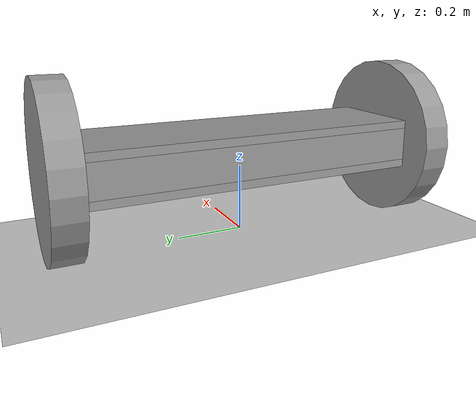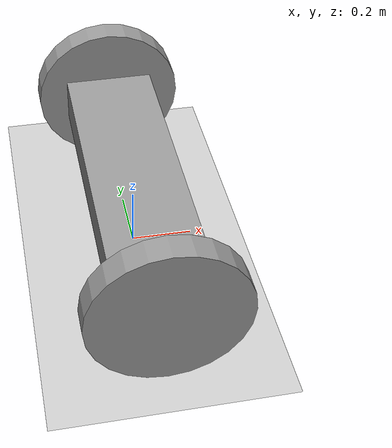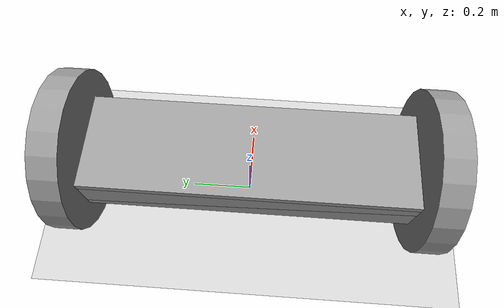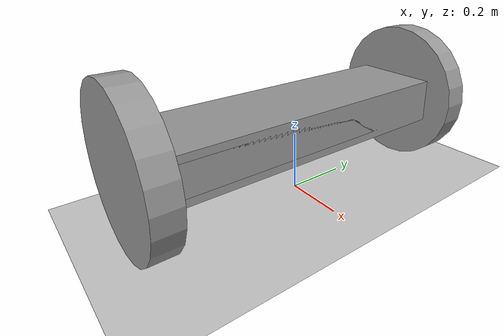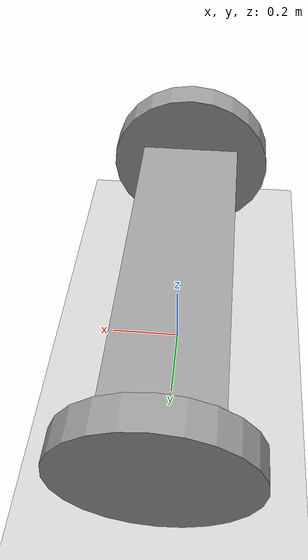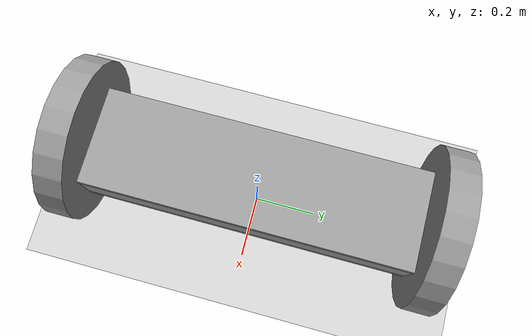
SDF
<sdf version="1.6">
 <world name="default">
  <model name="ground_plane">
   <static>1</static>
   <link name="link">
    <collision name="collision">
     <geometry><plane><normal>0 0 1</normal><size>100 100</size></plane></geometry>
     <surface><friction><ode><mu>100</mu><mu2>50</mu2></ode></friction></surface>
    </collision>
    <visual name="visual">
     <cast_shadows>0</cast_shadows>
     <geometry><plane><normal>0 0 1</normal><size>100 100</size></plane></geometry>
     <material>
      <script><uri>file://media/materials/scripts/gazebo.material</uri><name>Gazebo/Grey</name></script>
     </material>
    </visual>
   </link>
  </model>
  <model name="robot">
   <link name="link_0">
    <inertial>
     <mass>0.118489</mass>
     <inertia>
      <ixx>0.00517304</ixx>
      <ixy>0</ixy>
      <ixz>0</ixz>
      <iyy>0.0128061</iyy>
      <iyz>0</iyz>
      <izz>0.0175459</izz>
     </inertia>
    </inertial>
    <visual name="visual">
     <geometry><box><size>0.3 1 0.1</size></box></geometry>
     <material>
      <lighting>1</lighting>
      <script><uri>file://media/materials/scripts/gazebo.material</uri><name>Gazebo/Grey</name></script>
      <ambient>0.3 0.3 0.3 1</ambient>
      <diffuse>0.7 0.7 0.7 1</diffuse>
      <specular>0.01 0.01 0.01 1</specular>
      <emissive>0 0 0 1</emissive>
      <shader type="vertex"><normal_map>__default__</normal_map></shader>
     </material>
    </visual>
    <visual name="ModelPreview_0::link_0::visual_1">
     <geometry><box><size>0.3 1 0.148101</size></box></geometry>
     <material>
      <lighting>1</lighting>
      <script><uri>file://media/materials/scripts/gazebo.material</uri><name>Gazebo/Grey</name></script>
      <ambient>0.3 0.3 0.3 1</ambient>
      <diffuse>0.7 0.7 0.7 1</diffuse>
      <specular>0.01 0.01 0.01 1</specular>
      <emissive>0 0 0 1</emissive>
      <shader type="vertex"><normal_map>__default__</normal_map></shader>
     </material>
    </visual>
    <collision name="collision">
     <geometry><box><size>0.3 1 0.1</size></box></geometry>
     <surface>
      <friction>
       <ode><mu>1</mu><mu2>1</mu2><fdir1>0 0 0</fdir1><slip1>0</slip1><slip2>0</slip2></ode>
       <torsional>
        <coefficient>1</coefficient>
        <patch_radius>0</patch_radius>
        <surface_radius>0</surface_radius>
        <use_patch_radius>1</use_patch_radius>
        <ode><slip>0</slip></ode>
       </torsional>
      </friction>
      <bounce><restitution_coefficient>0</restitution_coefficient><threshold>1e+06</threshold></bounce>
      <contact>
       <collide_without_contact>0</collide_without_contact>
       <collide_without_contact_bitmask>1</collide_without_contact_bitmask>
       <collide_bitmask>1</collide_bitmask>
       <ode>
        <soft_cfm>0</soft_cfm>
        <soft_erp>0.2</soft_erp>
        <kp>1e+13</kp>
        <kd>1</kd>
        <max_vel>0.01</max_vel>
        <min_depth>0</min_depth>
       </ode>
       <bullet>
        <split_impulse>1</split_impulse>
        <split_impulse_penetration_threshold>-0.01</split_impulse_penetration_threshold>
        <soft_cfm>0</soft_cfm>
        <soft_erp>0.2</soft_erp>
        <kp>1e+13</kp>
        <kd>1</kd>
       </bullet>
      </contact>
     </surface>
    </collision>
   </link>
   <link name="link_1">
    <pose>0 -0.542501 0 1.5708 -0 0</pose>
    <inertial>
     <mass>0.0996712</mass>
     <inertia>
      <ixx>0.00631196</ixx>
      <ixy>0</ixy>
      <ixz>0</ixz>
      <iyy>0.00631196</iyy>
      <iyz>0</iyz>
      <izz>0.0124589</izz>
     </inertia>
    </inertial>
    <visual name="visual">
     <geometry><cylinder><radius>0.25</radius><length>0.085</length></cylinder></geometry>
     <material>
      <lighting>1</lighting>
      <script><uri>file://media/materials/scripts/gazebo.material</uri><name>Gazebo/Grey</name></script>
      <ambient>0.3 0.3 0.3 1</ambient>
      <diffuse>0.7 0.7 0.7 1</diffuse>
      <specular>0.01 0.01 0.01 1</specular>
      <emissive>0 0 0 1</emissive>
      <shader type="vertex"><normal_map>__default__</normal_map></shader>
     </material>
    </visual>
    <collision name="collision">
     <geometry><cylinder><radius>0.25</radius><length>0.085</length></cylinder></geometry>
     <surface>
      <friction>
       <ode><mu>1</mu><mu2>1</mu2><fdir1>0 0 0</fdir1><slip1>0</slip1><slip2>0</slip2></ode>
       <torsional>
        <coefficient>1</coefficient>
        <patch_radius>0</patch_radius>
        <surface_radius>0</surface_radius>
        <use_patch_radius>1</use_patch_radius>
        <ode><slip>0</slip></ode>
       </torsional>
      </friction>
      <bounce><restitution_coefficient>0</restitution_coefficient><threshold>1e+06</threshold></bounce>
      <contact>
       <collide_without_contact>0</collide_without_contact>
       <collide_without_contact_bitmask>1</collide_without_contact_bitmask>
       <collide_bitmask>1</collide_bitmask>
       <ode>
        <soft_cfm>0</soft_cfm>
        <soft_erp>0.2</soft_erp>
        <kp>1e+13</kp>
        <kd>1</kd>
        <max_vel>0.01</max_vel>
        <min_depth>0</min_depth>
       </ode>
       <bullet>
        <split_impulse>1</split_impulse>
        <split_impulse_penetration_threshold>-0.01</split_impulse_penetration_threshold>
        <soft_cfm>0</soft_cfm>
        <soft_erp>0.2</soft_erp>
        <kp>1e+13</kp>
        <kd>1</kd>
       </bullet>
      </contact>
     </surface>
    </collision>
   </link>
   <link name="link_1_clone">
    <pose>0 0.542501 0 1.5708 -0 0</pose>
    <inertial>
     <mass>0.0996712</mass>
     <inertia>
      <ixx>0.00631196</ixx>
      <ixy>0</ixy>
      <ixz>0</ixz>
      <iyy>0.00631196</iyy>
      <iyz>0</iyz>
      <izz>0.0124589</izz>
     </inertia>
    </inertial>
    <visual name="visual">
     <geometry><cylinder><radius>0.25</radius><length>0.085</length></cylinder></geometry>
     <material>
      <lighting>1</lighting>
      <script><uri>file://media/materials/scripts/gazebo.material</uri><name>Gazebo/Grey</name></script>
      <ambient>0.3 0.3 0.3 1</ambient>
      <diffuse>0.7 0.7 0.7 1</diffuse>
      <specular>0.01 0.01 0.01 1</specular>
      <emissive>0 0 0 1</emissive>
      <shader type="vertex"><normal_map>__default__</normal_map></shader>
     </material>
    </visual>
    <collision name="collision">
     <geometry><cylinder><radius>0.25</radius><length>0.085</length></cylinder></geometry>
     <surface>
      <friction>
       <ode><mu>1</mu><mu2>1</mu2><fdir1>0 0 0</fdir1><slip1>0</slip1><slip2>0</slip2></ode>
       <torsional>
        <coefficient>1</coefficient>
        <patch_radius>0</patch_radius>
        <surface_radius>0</surface_radius>
        <use_patch_radius>1</use_patch_radius>
        <ode><slip>0</slip></ode>
       </torsional>
      </friction>
      <bounce><restitution_coefficient>0</restitution_coefficient><threshold>1e+06</threshold></bounce>
      <contact>
       <collide_without_contact>0</collide_without_contact>
       <collide_without_contact_bitmask>1</collide_without_contact_bitmask>
       <collide_bitmask>1</collide_bitmask>
       <ode>
        <soft_cfm>0</soft_cfm>
        <soft_erp>0.2</soft_erp>
        <kp>1e+13</kp>
        <kd>1</kd>
        <max_vel>0.01</max_vel>
        <min_depth>0</min_depth>
       </ode>
       <bullet>
        <split_impulse>1</split_impulse>
        <split_impulse_penetration_threshold>-0.01</split_impulse_penetration_threshold>
        <soft_cfm>0</soft_cfm>
        <soft_erp>0.2</soft_erp>
        <kp>1e+13</kp>
        <kd>1</kd>
       </bullet>
      </contact>
     </surface>
    </collision>
   </link>
   <joint name="link_0_JOINT_0" type="revolute">
    <parent>link_0</parent>
    <child>link_1</child>
    <axis>
     <xyz>0 0 1</xyz>
     <use_parent_model_frame>0</use_parent_model_frame>
     <limit>
      <lower>-1.79769e+308</lower>
      <upper>1.79769e+308</upper>
      <effort>-1</effort>
      <velocity>-1</velocity>
     </limit>
     <dynamics>
      <spring_reference>0</spring_reference>
      <spring_stiffness>0</spring_stiffness>
      <damping>0</damping>
     </dynamics>
    </axis>
    <physics>
     <ode><limit><cfm>0</cfm><erp>0.2</erp></limit><suspension><cfm>0</cfm><erp>0.2</erp></suspension></ode>
    </physics>
   </joint>
   <joint name="link_0_JOINT_1" type="revolute">
    <parent>link_0</parent>
    <child>link_1_clone</child>
    <axis>
     <xyz>0 0 1</xyz>
     <use_parent_model_frame>0</use_parent_model_frame>
     <limit>
      <lower>-1.79769e+308</lower>
      <upper>1.79769e+308</upper>
      <effort>-1</effort>
      <velocity>-1</velocity>
     </limit>
     <dynamics>
      <spring_reference>0</spring_reference>
      <spring_stiffness>0</spring_stiffness>
      <damping>0</damping>
     </dynamics>
    </axis>
    <physics>
     <ode><limit><cfm>0</cfm><erp>0.2</erp></limit><suspension><cfm>0</cfm><erp>0.2</erp></suspension></ode>
    </physics>
   </joint>
   <static>0</static>
   <pose>0 -0.002781 0.249997 -5e-06 0 0</pose>
  </model>
 </world>
</sdf>
